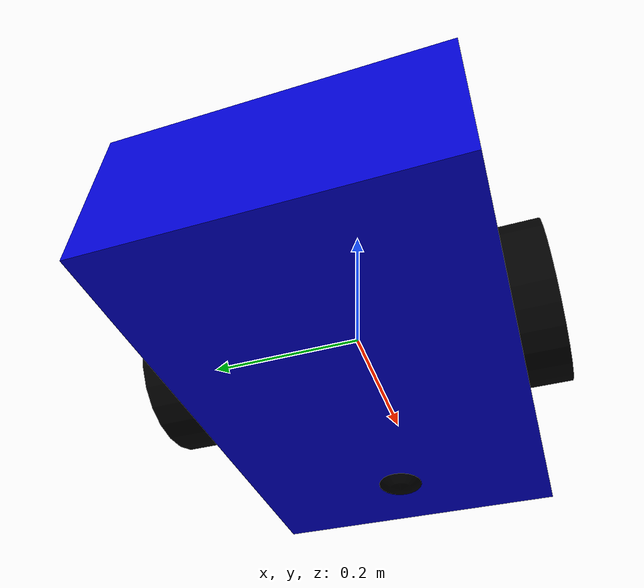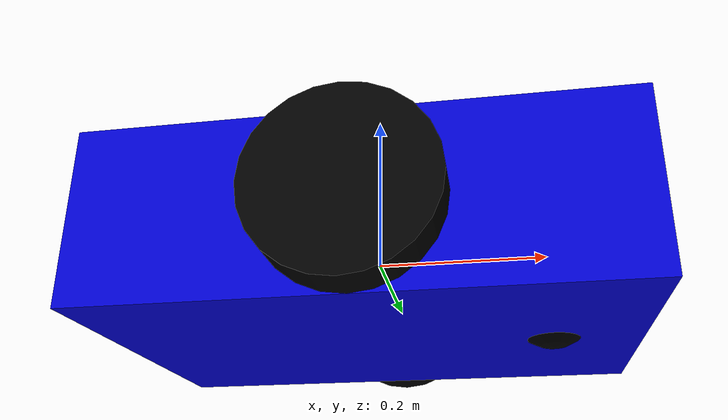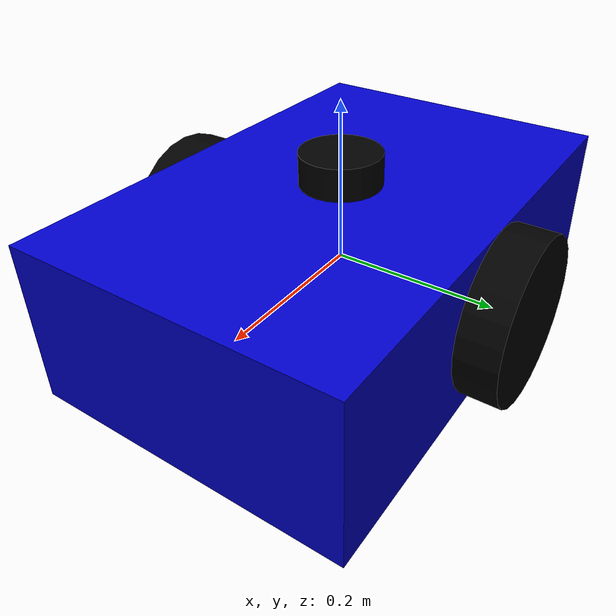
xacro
<?xml version="1.0"?>
<robot xmlns:xacro="http://www.ros.org/wiki/xacro">

    <!-- Robot Properties -->
    <xacro:property name="base_length" value="0.6"/>
    <xacro:property name="base_width" value="0.4"/>
    <xacro:property name="base_height" value="0.2"/>

    <xacro:property name="wheel_radius" value="0.1"/>
    <xacro:property name="wheel_width" value="0.05"/>
    <xacro:property name="caster_radius" value="0.05"/>

    <!-- Colors -->
    <material name="blue">
        <color rgba="0 0 0.8 1"/>
    </material>

    <material name="black">
        <color rgba="0 0 0 1"/>
    </material>

    <!-- Dummy Link (to fix inertia warning) -->
    <link name="dummy_link"/>

    <!-- Base Link -->
    <joint name="dummy_joint" type="fixed">
        <parent link="dummy_link"/>
        <child link="base_link"/>
    </joint>

    <link name="base_link">
        <visual>
            <geometry>
                <box size="${base_length} ${base_width} ${base_height}"/>
            </geometry>
            <material name="blue"/>
        </visual>
        <collision>
            <geometry>
                <box size="${base_length} ${base_width} ${base_height}"/>
            </geometry>
        </collision>
        <inertial>
            <mass value="5.0"/>
            <inertia ixx="0.0395" ixy="0" ixz="0" iyy="0.086" iyz="0" izz="0.0125"/>
        </inertial>
    </link>

    <!-- Right Wheel -->
    <link name="right_wheel">
        <visual>
            <geometry>
                <cylinder radius="${wheel_radius}" length="${wheel_width}"/>
            </geometry>
            <material name="black"/>
        </visual>
        <collision>
            <geometry>
                <cylinder radius="${wheel_radius}" length="${wheel_width}"/>
            </geometry>
        </collision>
        <inertial>
            <mass value="0.5"/>
            <inertia ixx="0.001" ixy="0" ixz="0" iyy="0.001" iyz="0" izz="0.001"/>
        </inertial>
    </link>

    <!-- Right Wheel Joint -->
    <joint name="right_wheel_joint" type="continuous">
        <parent link="base_link"/>
        <child link="right_wheel"/>
        <origin xyz="0 ${-base_width/2 - wheel_width/2} ${-base_height/2 + wheel_radius}" rpy="${pi/2} 0 0"/>
        <axis xyz="0 0 1"/>
    </joint>

    <!-- Left Wheel -->
    <link name="left_wheel">
        <visual>
            <geometry>
                <cylinder radius="${wheel_radius}" length="${wheel_width}"/>
            </geometry>
            <material name="black"/>
        </visual>
        <collision>
            <geometry>
                <cylinder radius="${wheel_radius}" length="${wheel_width}"/>
            </geometry>
        </collision>
        <inertial>
            <mass value="0.5"/>
            <inertia ixx="0.001" ixy="0" ixz="0" iyy="0.001" iyz="0" izz="0.001"/>
        </inertial>
    </link>

    <!-- Left Wheel Joint -->
    <joint name="left_wheel_joint" type="continuous">
        <parent link="base_link"/>
        <child link="left_wheel"/>
        <origin xyz="0 ${base_width/2 + wheel_width/2} ${-base_height/2 + wheel_radius}" rpy="${pi/2} 0 0"/>
        <axis xyz="0 0 1"/>
    </joint>

    <!-- Caster Wheel -->
    <link name="caster_wheel">
        <visual>
            <geometry>
                <sphere radius="${caster_radius}"/>
            </geometry>
            <material name="black"/>
        </visual>
        <collision>
            <geometry>
                <sphere radius="${caster_radius}"/>
            </geometry>
        </collision>
        <inertial>
            <mass value="0.1"/>
            <inertia ixx="0.0001" ixy="0" ixz="0" iyy="0.0001" iyz="0" izz="0.0001"/>
        </inertial>
    </link>

    <!-- Caster Joint -->
    <joint name="caster_wheel_joint" type="fixed">
        <parent link="base_link"/>
        <child link="caster_wheel"/>
        <origin xyz="${base_length/3} 0 ${-base_height/2 + caster_radius - 0.01}" rpy="0 0 0"/>
    </joint>

    <!-- Laser Scanner Link -->
    <link name="laser_scanner">
        <visual>
            <geometry>
                <cylinder radius="0.05" length="0.04"/>
            </geometry>
            <material name="black"/>
        </visual>
        <collision>
            <geometry>
                <cylinder radius="0.05" length="0.04"/>
            </geometry>
        </collision>
        <inertial>
            <mass value="0.1"/>
            <inertia ixx="0.0001" ixy="0" ixz="0" iyy="0.0001" iyz="0" izz="0.0001"/>
        </inertial>
    </link>

    <!-- Laser Scanner Joint -->
    <joint name="laser_scanner_joint" type="fixed">
        <parent link="base_link"/>
        <child link="laser_scanner"/>
        <origin xyz="0 0 ${base_height/2 + 0.02}" rpy="0 0 0"/>
    </joint>

</robot>
